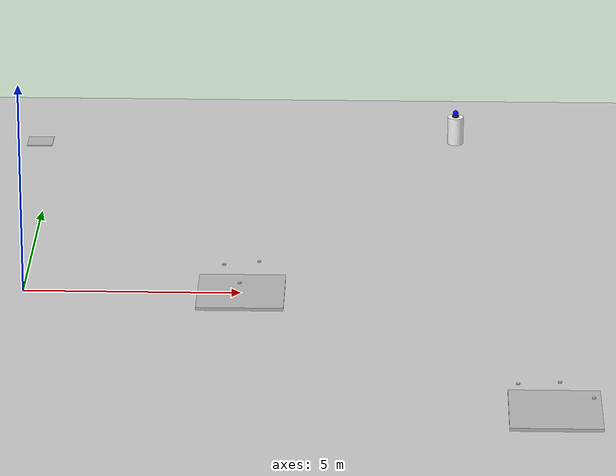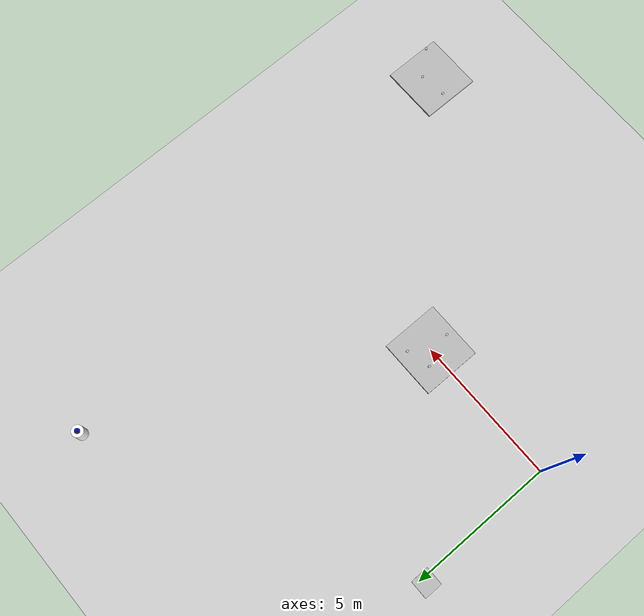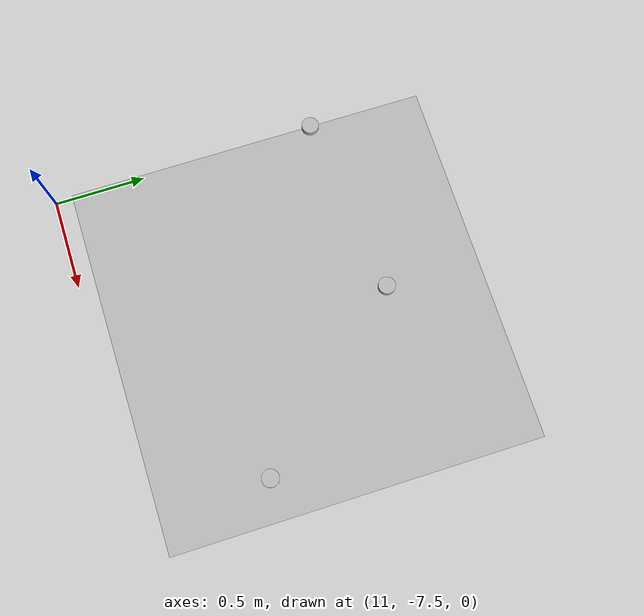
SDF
<sdf version="1.9">
 <world name="custom_uav_replenishment">
  <physics type="ode">
   <max_step_size>0.004</max_step_size>
   <real_time_factor>1.0</real_time_factor>
   <real_time_update_rate>250</real_time_update_rate>
  </physics>
  <plugin name="gz::sim::systems::Physics" filename="gz-sim-physics-system"/>
  <plugin name="gz::sim::systems::UserCommands" filename="gz-sim-user-commands-system"/>
  <plugin name="gz::sim::systems::SceneBroadcaster" filename="gz-sim-scene-broadcaster-system"/>
  <plugin name="gz::sim::systems::Contact" filename="gz-sim-contact-system"/>
  <plugin name="gz::sim::systems::Imu" filename="gz-sim-imu-system"/>
  <plugin name="gz::sim::systems::AirPressure" filename="gz-sim-air-pressure-system"/>
  <plugin name="gz::sim::systems::Sensors" filename="gz-sim-sensors-system">
   <render_engine>ogre2</render_engine>
  </plugin>
  <gravity>0 0 -9.8</gravity>
  <magnetic_field>6e-06 2.3e-05 -4.2e-05</magnetic_field>
  <atmosphere type="adiabatic"/>
  <scene>
   <grid>false</grid>
   <ambient>0.4 0.4 0.4 1</ambient>
   <background>0.7 0.7 0.7 1</background>
   <shadows>true</shadows>
  </scene>
  <model name="ground_plane">
   <static>true</static>
   <link name="link">
    <collision name="collision">
     <geometry><plane><normal>0 0 1</normal><size>1 1</size></plane></geometry>
    </collision>
    <visual name="visual">
     <geometry><plane><normal>0 0 1</normal><size>100 100</size></plane></geometry>
     <material>
      <ambient>0.8 0.8 0.8 1</ambient>
      <diffuse>0.8 0.8 0.8 1</diffuse>
      <specular>0.8 0.8 0.8 1</specular>
     </material>
    </visual>
   </link>
  </model>
  <light name="sun" type="directional">
   <pose>0 0 500 0 -0 0</pose>
   <intensity>1</intensity>
   <direction>0.001 0.625 -0.78</direction>
   <diffuse>0.904 0.904 0.904 1</diffuse>
   <specular>0.271 0.271 0.271 1</specular>
  </light>
  <include><uri>model://landingpad</uri><name>landingpad</name><pose>5 0 0 0 0 0</pose></include>
  <include><uri>model://red_can</uri><name>red_can1</name><pose>5 -0.6 0.5 0 0 0</pose></include>
  <include><uri>model://blue_can</uri><name>blue_can1</name><pose>4.6 0.5 0.5 0 0 0</pose></include>
  <include><uri>model://green_can</uri><name>green_can1</name><pose>5.4 0.7 0.5 0 0 0</pose></include>
  <include><uri>model://landingpad</uri><pose>12 -6.4 0 0 0 0</pose><name>landingpad_1</name></include>
  <include><uri>model://red_can</uri><name>red_can2</name><pose>12.8 -6.8 0.5 0 0 0</pose></include>
  <include><uri>model://blue_can</uri><name>blue_can2</name><pose>11.2 -6.1 0.5 0 0 0</pose></include>
  <include><uri>model://green_can</uri><name>green_can2</name><pose>12.1 -6.0 0.5 0 0 0</pose></include>
  <include>
   <uri>model://wamv_apriltag_array</uri>
   <name>wamv_apriltag_array</name>
   <pose>0 5 1.8 0 0 -1.57</pose>
  </include>
  <joint name="april_tag_joint" type="fixed">
   <parent>wamv::wamv_caleuche/base_link</parent>
   <child>wamv_apriltag_array::link</child>
   <pose>0 5 2.0 0 0 0</pose>
  </joint>
  <include>
   <uri>model://robotx_light_buoy</uri>
   <name>robotx_light_buoy_1</name>
   <pose>10 10 0 0 0 0</pose>
  </include>
 </world>
</sdf>

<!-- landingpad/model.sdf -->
<sdf version="1.9">
  <model name="landingpad">
    <pose>0 0 0.05 0 0 0</pose>
    <static>true</static>
    <link name="link">
      <inertial>
        <mass>10.0</mass>
        <inertia> <!-- inertias are tricky to compute -->
          <!-- http://gazebosim.org/tutorials?tut=inertia&cat=build_robot -->
          <ixx>0.1</ixx>       <!-- for a box: ixx = 0.083 * mass * (y*y + z*z) -->
          <ixy>0.0</ixy>         <!-- for a box: ixy = 0 -->
          <ixz>0.0</ixz>         <!-- for a box: ixz = 0 -->
          <iyy>0.1</iyy>       <!-- for a box: iyy = 0.083 * mass * (x*x + z*z) -->
          <iyz>0.0</iyz>         <!-- for a box: iyz = 0 -->
          <izz>0.1</izz>       <!-- for a box: izz = 0.083 * mass * (x*x + y*y) -->
        </inertia>
      </inertial>
      <collision name="collision">
        <geometry>
          <box>
            <size>2 2 0.1</size>
          </box>
        </geometry>
      </collision>
      <visual name="visual">
        <geometry>
          <mesh>
            <uri>model://landingpad/meshes/landingpad.dae</uri>
            <scale>1 1 1</scale>
          </mesh>
        </geometry>
      </visual>
    </link>
  </model>
</sdf>

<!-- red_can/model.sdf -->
<sdf version="1.9">
  <model name="red_can">
    <pose>0 0 0.0135 0 0 0</pose>
    <static>false</static>
    <link name="link">
      <inertial>
        <mass>5.0</mass>
        <inertia> <!-- inertias are tricky to compute -->
          <!-- http://gazebosim.org/tutorials?tut=inertia&cat=build_robot -->
          <ixx>0.1</ixx>       <!-- for a box: ixx = 0.083 * mass * (y*y + z*z) -->
          <ixy>0.0</ixy>         <!-- for a box: ixy = 0 -->
          <ixz>0.0</ixz>         <!-- for a box: ixz = 0 -->
          <iyy>0.1</iyy>       <!-- for a box: iyy = 0.083 * mass * (x*x + z*z) -->
          <iyz>0.0</iyz>         <!-- for a box: iyz = 0 -->
          <izz>0.1</izz>       <!-- for a box: izz = 0.083 * mass * (x*x + y*y) -->
        </inertia>
      </inertial>
      <collision name="collision">
        <geometry>
          <cylinder>
            <radius>0.0425</radius>
            <length>0.027</length>
          </cylinder>
        </geometry>
      </collision>
      <visual name="visual">
        <geometry>
          <mesh>
            <uri>model://red_can/meshes/red_can.dae</uri>
            <scale>1 1 1</scale>
          </mesh>
        </geometry>
      </visual>
    </link>
  </model>
</sdf>

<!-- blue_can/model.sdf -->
<sdf version="1.9">
  <model name="blue_can">
    <pose>0 0 0.0135 0 0 0</pose>
    <static>false</static>
    <link name="link">
      <inertial>
        <mass>5.0</mass>
        <inertia> <!-- inertias are tricky to compute -->
          <!-- http://gazebosim.org/tutorials?tut=inertia&cat=build_robot -->
          <ixx>0.1</ixx>       <!-- for a box: ixx = 0.083 * mass * (y*y + z*z) -->
          <ixy>0.0</ixy>         <!-- for a box: ixy = 0 -->
          <ixz>0.0</ixz>         <!-- for a box: ixz = 0 -->
          <iyy>0.1</iyy>       <!-- for a box: iyy = 0.083 * mass * (x*x + z*z) -->
          <iyz>0.0</iyz>         <!-- for a box: iyz = 0 -->
          <izz>0.1</izz>       <!-- for a box: izz = 0.083 * mass * (x*x + y*y) -->
        </inertia>
      </inertial>
      <collision name="collision">
        <geometry>
          <cylinder>
            <radius>0.0425</radius>
            <length>0.027</length>
          </cylinder>
        </geometry>
      </collision>
      <visual name="visual">
        <geometry>
          <mesh>
            <uri>model://blue_can/meshes/blue_can.dae</uri>
            <scale>1 1 1</scale>
          </mesh>
        </geometry>
      </visual>
    </link>
  </model>
</sdf>

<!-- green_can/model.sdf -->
<sdf version="1.9">
  <model name="green_can">
    <pose>0 0 0.0135 0 0 0</pose>
    <static>false</static>
    <link name="link">
      <inertial>
        <mass>5.0</mass>
        <inertia> <!-- inertias are tricky to compute -->
          <!-- http://gazebosim.org/tutorials?tut=inertia&cat=build_robot -->
          <ixx>0.1</ixx>       <!-- for a box: ixx = 0.083 * mass * (y*y + z*z) -->
          <ixy>0.0</ixy>         <!-- for a box: ixy = 0 -->
          <ixz>0.0</ixz>         <!-- for a box: ixz = 0 -->
          <iyy>0.1</iyy>       <!-- for a box: iyy = 0.083 * mass * (x*x + z*z) -->
          <iyz>0.0</iyz>         <!-- for a box: iyz = 0 -->
          <izz>0.1</izz>       <!-- for a box: izz = 0.083 * mass * (x*x + y*y) -->
        </inertia>
      </inertial>
      <collision name="collision">
        <geometry>
          <cylinder>
            <radius>0.0425</radius>
            <length>0.027</length>
          </cylinder>
        </geometry>
      </collision>
      <visual name="visual">
        <geometry>
          <mesh>
            <uri>model://green_can/meshes/green_can.dae</uri>
            <scale>1 1 1</scale>
          </mesh>
        </geometry>
      </visual>
    </link>
  </model>
</sdf>

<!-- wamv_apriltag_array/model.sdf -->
<sdf version="1.9">
  <model name="wamv_apriltag_array">
    <pose>0 0 0.01 0 0 0</pose>
    <static>true</static>
    <link name="link">
      <inertial>
        <mass>10.0</mass>
        <inertia> <!-- inertias are tricky to compute -->
          <!-- http://gazebosim.org/tutorials?tut=inertia&cat=build_robot -->
          <ixx>0.1</ixx>       <!-- for a box: ixx = 0.083 * mass * (y*y + z*z) -->
          <ixy>0.0</ixy>         <!-- for a box: ixy = 0 -->
          <ixz>0.0</ixz>         <!-- for a box: ixz = 0 -->
          <iyy>0.1</iyy>       <!-- for a box: iyy = 0.083 * mass * (x*x + z*z) -->
          <iyz>0.0</iyz>         <!-- for a box: iyz = 0 -->
          <izz>0.1</izz>       <!-- for a box: izz = 0.083 * mass * (x*x + y*y) -->
        </inertia>
      </inertial>
      <collision name="collision">
        <geometry>
          <box>
            <size>0.6 0.6 0.02</size>
          </box>
        </geometry>
      </collision>
      <visual name="visual">
        <geometry>
          <mesh>
            <uri>model://wamv_apriltag_array/meshes/wamv_apriltag_array.dae</uri>
            <scale>1 1 1</scale>
          </mesh>
        </geometry>
      </visual>
    </link>
  </model>
</sdf>

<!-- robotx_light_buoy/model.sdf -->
<sdf version="1.9">
  <model name="robotx_light_buoy">
    <static>true</static>

    <link name="base_link">

      <!-- Cuerpo principal: cilindro blanco -->
      <visual name="buoy_body_visual">
        <pose>0 0 0.35 0 0 0</pose>
        <geometry>
          <cylinder>
            <radius>0.2</radius>
            <length>0.7</length>
          </cylinder>
        </geometry>
        <material>
          <ambient>1 1 1 1</ambient>
          <diffuse>1 1 1 1</diffuse>
        </material>
      </visual>

      <collision name="buoy_body_collision">
        <pose>0 0 0.35 0 0 0</pose>
        <geometry>
          <cylinder>
            <radius>0.2</radius>
            <length>0.7</length>
          </cylinder>
        </geometry>
      </collision>

      <!-- Base negra achatada del beacon -->
      <visual name="beacon_base_visual">
        <pose>0 0 0.72 0 0 0</pose>
        <geometry>
          <cylinder>
            <radius>0.09</radius>
            <length>0.04</length>
          </cylinder>
        </geometry>
        <material>
          <ambient>0 0 0 1</ambient>
          <diffuse>0 0 0 1</diffuse>
        </material>
      </visual>

      <!-- Cupula beacon (esfera visual emissive静态 — representa el color) -->
      <visual name="beacon_dome_visual">
        <pose>0 0 0.80 0 0 0</pose>
        <geometry>
          <sphere>
            <radius>0.07</radius>
          </sphere>
        </geometry>
        <material>
          <ambient>0 0 1 1</ambient>
          <diffuse>0 0 1 1</diffuse>
          <emissive>0 0 0.6 1</emissive>
          <specular>0.1 0.1 0.1 1</specular>
        </material>
      </visual>

      <!--
        Luz real del beacon.
        El plugin la controla modificando directamente el componente Light.
        NO usar LightCmd — modificamos sdf::Light + SetChanged.
      -->
      <light name="beacon_light" type="point">
        <pose>0 0 0.85 0 0 0</pose>
        <diffuse>0 0 1 1</diffuse>
        <specular>0 0 0.5 1</specular>
        <intensity>1.5</intensity>
        <attenuation>
          <range>8</range>
          <constant>0.5</constant>
          <linear>0.05</linear>
          <quadratic>0.01</quadratic>
        </attenuation>
        <cast_shadows>false</cast_shadows>
        <!-- Visualize=false elimina el helper/overlay verde de Gazebo -->
        <visualize>false</visualize>
      </light>

    </link>

    <plugin
      filename="gz-sim-robotx-light-buoy-system"
      name="robotx::RobotXLightBuoySystem">
      <!-- color: blue | red | green -->
      <color>blue</color>
      <!-- mode: solid | flashing -->
      <mode>flashing</mode>
      <!-- blink_period en segundos -->
      <blink_period>1.0</blink_period>
    </plugin>

  </model>
</sdf>
